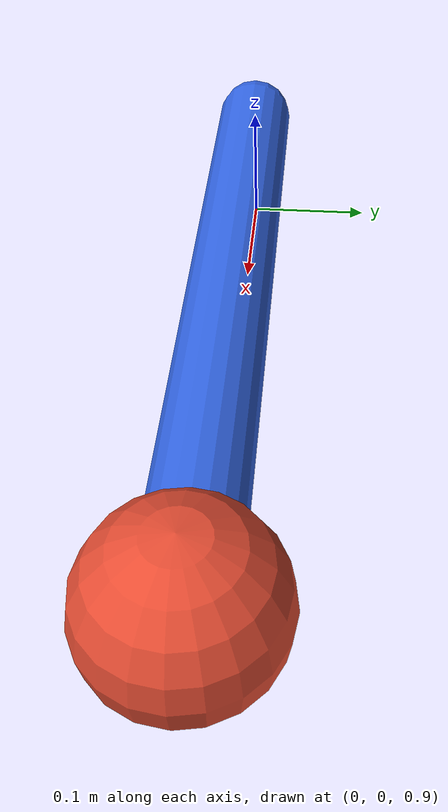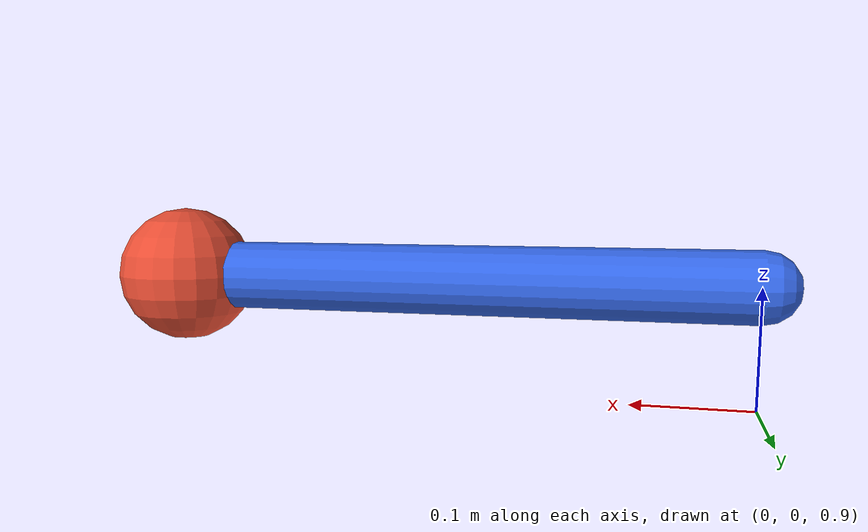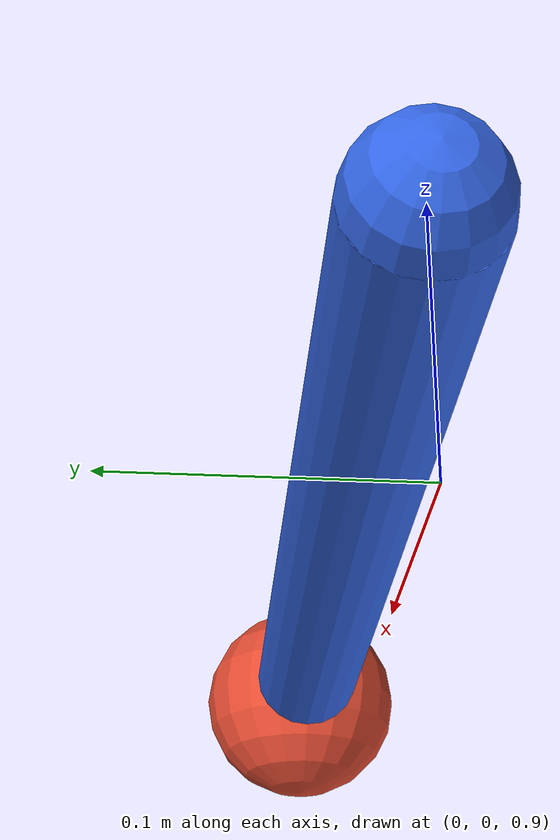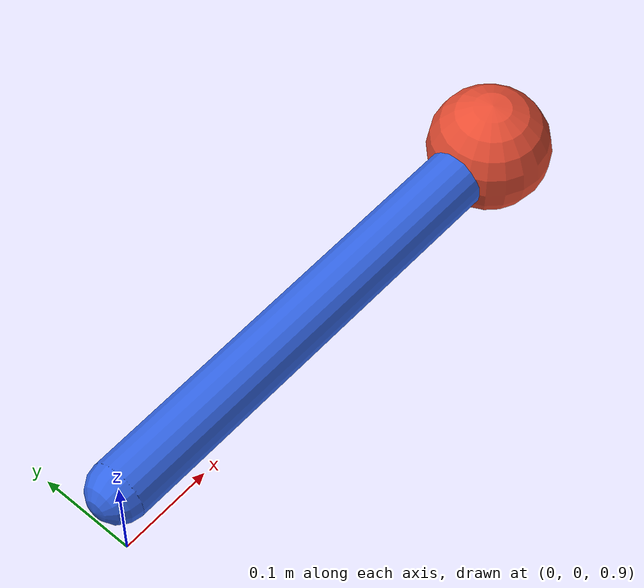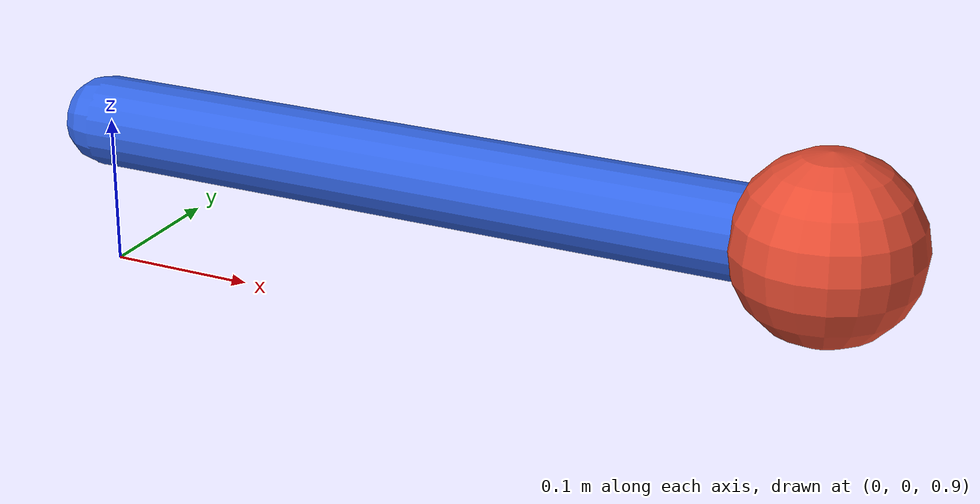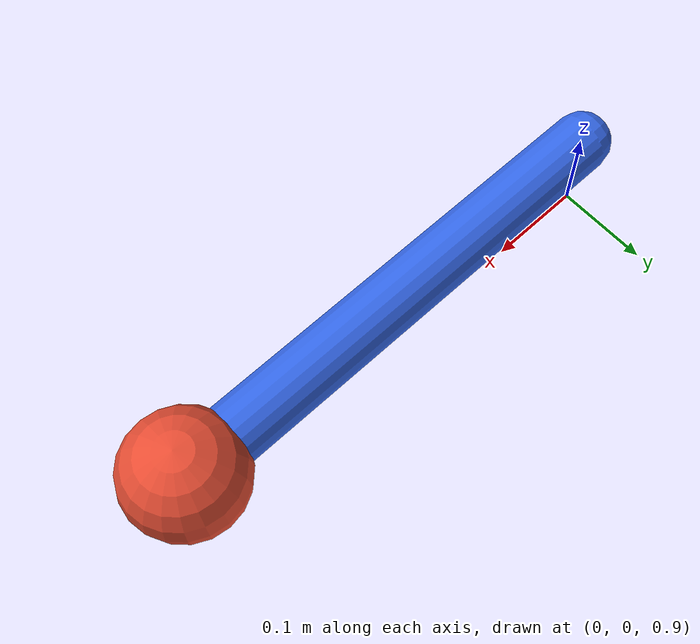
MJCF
<mujoco model="pendulum">
  <option gravity="0 0 -9.81" timestep="0.002"/>
  <worldbody>
    <light pos="0 0 3"/>
    <geom type="plane" size="2 2 0.1" rgba="0.8 0.9 0.8 1"/>

    <body name="arm" pos="0 0 1">
      <joint name="pivot" type="hinge" axis="0 1 0" damping="0.1"/>
      <geom type="capsule" fromto="0 0 0  0.5 0 0" size="0.03" rgba="0.2 0.4 0.9 1"/>
      <geom type="sphere" pos="0.5 0 0" size="0.06" rgba="0.9 0.3 0.2 1"/>
    </body>
  </worldbody>
</mujoco>
